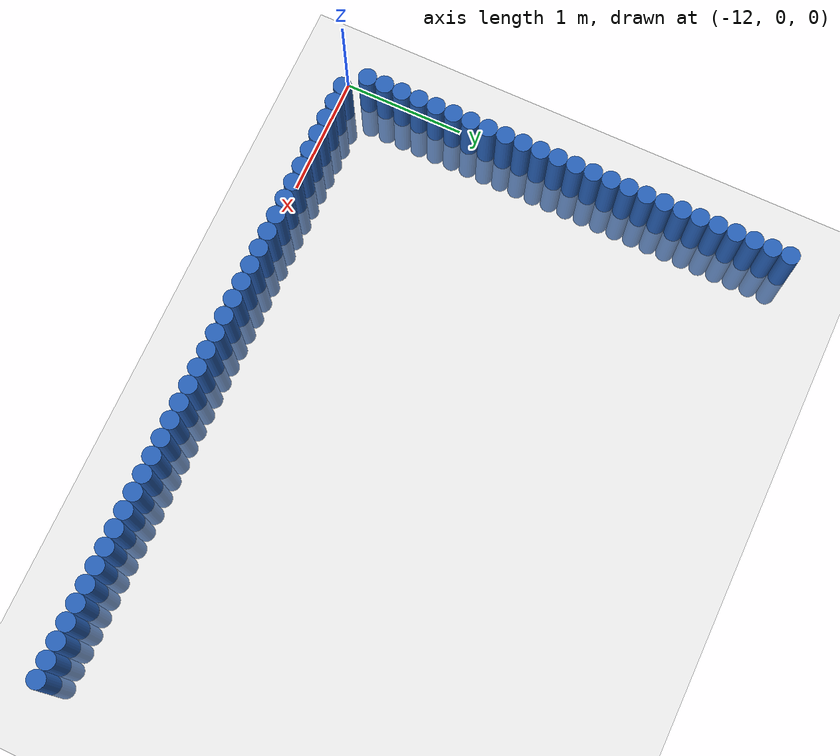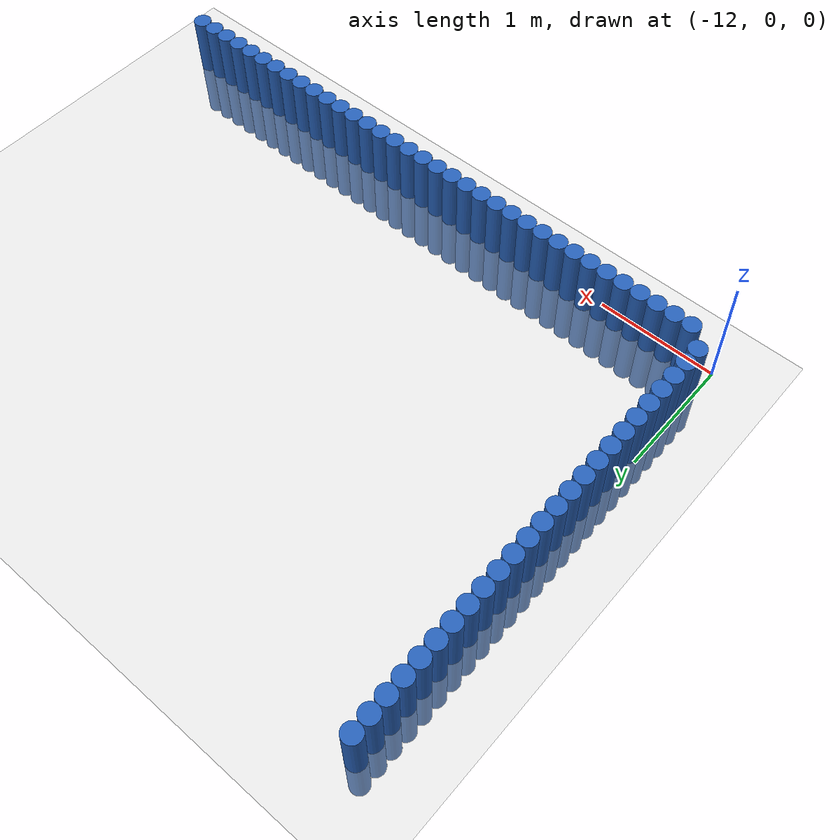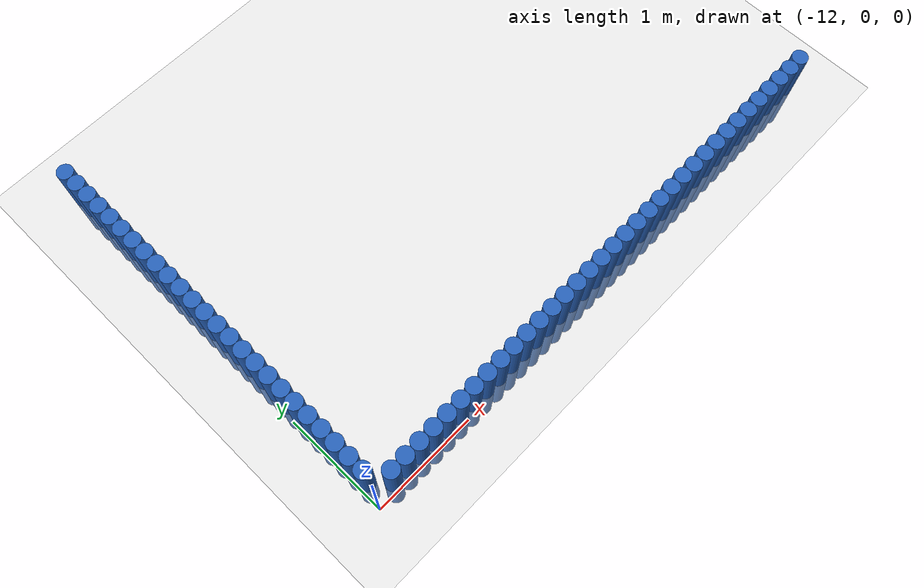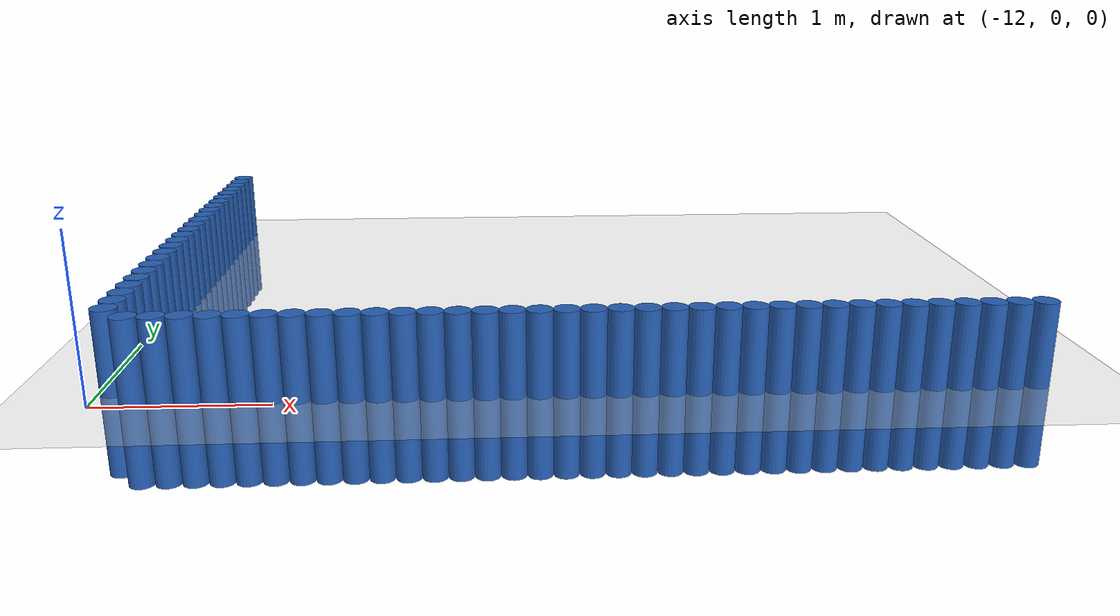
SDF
<sdf version="1.6">
 <world name="default">
  <model name="ground_plane">
   <static>1</static>
   <link name="link">
    <collision name="collision">
     <geometry><plane><normal>0 0 1</normal><size>100 100</size></plane></geometry>
     <surface><friction><ode><mu>100</mu><mu2>50</mu2></ode></friction></surface>
    </collision>
    <visual name="visual">
     <cast_shadows>0</cast_shadows>
     <geometry><plane><normal>0 0 1</normal><size>100 100</size></plane></geometry>
     <material>
      <script><uri>file://media/materials/scripts/gazebo.material</uri><name>Gazebo/Grey</name></script>
     </material>
    </visual>
   </link>
  </model>
  <model name="unit_cylinder_44">
   <static>1</static>
   <pose>-6.675 0.075 0 0 -0 0</pose>
   <link name="link">
    <inertial>
     <mass>1</mass>
     <inertia><ixx>0.145833</ixx><ixy>0</ixy><ixz>0</ixz><iyy>0.145833</iyy><iyz>0</iyz><izz>0.125</izz></inertia>
    </inertial>
    <collision name="collision">
     <geometry><cylinder><radius>0.075</radius><length>1</length></cylinder></geometry>
    </collision>
    <visual name="visual">
     <geometry><cylinder><radius>0.075</radius><length>1</length></cylinder></geometry>
     <material><ambient>0.152 0.379 0.72 1</ambient><diffuse>0.152 0.379 0.72 1</diffuse></material>
     <material>
      <script><name>Gazebo/Grey</name><uri>file://media/materials/scripts/gazebo.material</uri></script>
     </material>
    </visual>
   </link>
  </model>
  <model name="unit_cylinder_45">
   <static>1</static>
   <pose>-6.825 0.075 0 0 -0 0</pose>
   <link name="link">
    <inertial>
     <mass>1</mass>
     <inertia><ixx>0.145833</ixx><ixy>0</ixy><ixz>0</ixz><iyy>0.145833</iyy><iyz>0</iyz><izz>0.125</izz></inertia>
    </inertial>
    <collision name="collision">
     <geometry><cylinder><radius>0.075</radius><length>1</length></cylinder></geometry>
    </collision>
    <visual name="visual">
     <geometry><cylinder><radius>0.075</radius><length>1</length></cylinder></geometry>
     <material><ambient>0.152 0.379 0.72 1</ambient><diffuse>0.152 0.379 0.72 1</diffuse></material>
     <material>
      <script><name>Gazebo/Grey</name><uri>file://media/materials/scripts/gazebo.material</uri></script>
     </material>
    </visual>
   </link>
  </model>
  <model name="unit_cylinder_46">
   <static>1</static>
   <pose>-6.975 0.075 0 0 -0 0</pose>
   <link name="link">
    <inertial>
     <mass>1</mass>
     <inertia><ixx>0.145833</ixx><ixy>0</ixy><ixz>0</ixz><iyy>0.145833</iyy><iyz>0</iyz><izz>0.125</izz></inertia>
    </inertial>
    <collision name="collision">
     <geometry><cylinder><radius>0.075</radius><length>1</length></cylinder></geometry>
    </collision>
    <visual name="visual">
     <geometry><cylinder><radius>0.075</radius><length>1</length></cylinder></geometry>
     <material><ambient>0.152 0.379 0.72 1</ambient><diffuse>0.152 0.379 0.72 1</diffuse></material>
     <material>
      <script><name>Gazebo/Grey</name><uri>file://media/materials/scripts/gazebo.material</uri></script>
     </material>
    </visual>
   </link>
  </model>
  <model name="unit_cylinder_47">
   <static>1</static>
   <pose>-7.125 0.075 0 0 -0 0</pose>
   <link name="link">
    <inertial>
     <mass>1</mass>
     <inertia><ixx>0.145833</ixx><ixy>0</ixy><ixz>0</ixz><iyy>0.145833</iyy><iyz>0</iyz><izz>0.125</izz></inertia>
    </inertial>
    <collision name="collision">
     <geometry><cylinder><radius>0.075</radius><length>1</length></cylinder></geometry>
    </collision>
    <visual name="visual">
     <geometry><cylinder><radius>0.075</radius><length>1</length></cylinder></geometry>
     <material><ambient>0.152 0.379 0.72 1</ambient><diffuse>0.152 0.379 0.72 1</diffuse></material>
     <material>
      <script><name>Gazebo/Grey</name><uri>file://media/materials/scripts/gazebo.material</uri></script>
     </material>
    </visual>
   </link>
  </model>
  <model name="unit_cylinder_48">
   <static>1</static>
   <pose>-7.275 0.075 0 0 -0 0</pose>
   <link name="link">
    <inertial>
     <mass>1</mass>
     <inertia><ixx>0.145833</ixx><ixy>0</ixy><ixz>0</ixz><iyy>0.145833</iyy><iyz>0</iyz><izz>0.125</izz></inertia>
    </inertial>
    <collision name="collision">
     <geometry><cylinder><radius>0.075</radius><length>1</length></cylinder></geometry>
    </collision>
    <visual name="visual">
     <geometry><cylinder><radius>0.075</radius><length>1</length></cylinder></geometry>
     <material><ambient>0.152 0.379 0.72 1</ambient><diffuse>0.152 0.379 0.72 1</diffuse></material>
     <material>
      <script><name>Gazebo/Grey</name><uri>file://media/materials/scripts/gazebo.material</uri></script>
     </material>
    </visual>
   </link>
  </model>
  <model name="unit_cylinder_49">
   <static>1</static>
   <pose>-7.425 0.075 0 0 -0 0</pose>
   <link name="link">
    <inertial>
     <mass>1</mass>
     <inertia><ixx>0.145833</ixx><ixy>0</ixy><ixz>0</ixz><iyy>0.145833</iyy><iyz>0</iyz><izz>0.125</izz></inertia>
    </inertial>
    <collision name="collision">
     <geometry><cylinder><radius>0.075</radius><length>1</length></cylinder></geometry>
    </collision>
    <visual name="visual">
     <geometry><cylinder><radius>0.075</radius><length>1</length></cylinder></geometry>
     <material><ambient>0.152 0.379 0.72 1</ambient><diffuse>0.152 0.379 0.72 1</diffuse></material>
     <material>
      <script><name>Gazebo/Grey</name><uri>file://media/materials/scripts/gazebo.material</uri></script>
     </material>
    </visual>
   </link>
  </model>
  <model name="unit_cylinder_50">
   <static>1</static>
   <pose>-7.575 0.075 0 0 -0 0</pose>
   <link name="link">
    <inertial>
     <mass>1</mass>
     <inertia><ixx>0.145833</ixx><ixy>0</ixy><ixz>0</ixz><iyy>0.145833</iyy><iyz>0</iyz><izz>0.125</izz></inertia>
    </inertial>
    <collision name="collision">
     <geometry><cylinder><radius>0.075</radius><length>1</length></cylinder></geometry>
    </collision>
    <visual name="visual">
     <geometry><cylinder><radius>0.075</radius><length>1</length></cylinder></geometry>
     <material><ambient>0.152 0.379 0.72 1</ambient><diffuse>0.152 0.379 0.72 1</diffuse></material>
     <material>
      <script><name>Gazebo/Grey</name><uri>file://media/materials/scripts/gazebo.material</uri></script>
     </material>
    </visual>
   </link>
  </model>
  <model name="unit_cylinder_51">
   <static>1</static>
   <pose>-7.725 0.075 0 0 -0 0</pose>
   <link name="link">
    <inertial>
     <mass>1</mass>
     <inertia><ixx>0.145833</ixx><ixy>0</ixy><ixz>0</ixz><iyy>0.145833</iyy><iyz>0</iyz><izz>0.125</izz></inertia>
    </inertial>
    <collision name="collision">
     <geometry><cylinder><radius>0.075</radius><length>1</length></cylinder></geometry>
    </collision>
    <visual name="visual">
     <geometry><cylinder><radius>0.075</radius><length>1</length></cylinder></geometry>
     <material><ambient>0.152 0.379 0.72 1</ambient><diffuse>0.152 0.379 0.72 1</diffuse></material>
     <material>
      <script><name>Gazebo/Grey</name><uri>file://media/materials/scripts/gazebo.material</uri></script>
     </material>
    </visual>
   </link>
  </model>
  <model name="unit_cylinder_52">
   <static>1</static>
   <pose>-7.875 0.075 0 0 -0 0</pose>
   <link name="link">
    <inertial>
     <mass>1</mass>
     <inertia><ixx>0.145833</ixx><ixy>0</ixy><ixz>0</ixz><iyy>0.145833</iyy><iyz>0</iyz><izz>0.125</izz></inertia>
    </inertial>
    <collision name="collision">
     <geometry><cylinder><radius>0.075</radius><length>1</length></cylinder></geometry>
    </collision>
    <visual name="visual">
     <geometry><cylinder><radius>0.075</radius><length>1</length></cylinder></geometry>
     <material><ambient>0.152 0.379 0.72 1</ambient><diffuse>0.152 0.379 0.72 1</diffuse></material>
     <material>
      <script><name>Gazebo/Grey</name><uri>file://media/materials/scripts/gazebo.material</uri></script>
     </material>
    </visual>
   </link>
  </model>
  <model name="unit_cylinder_53">
   <static>1</static>
   <pose>-8.025 0.075 0 0 -0 0</pose>
   <link name="link">
    <inertial>
     <mass>1</mass>
     <inertia><ixx>0.145833</ixx><ixy>0</ixy><ixz>0</ixz><iyy>0.145833</iyy><iyz>0</iyz><izz>0.125</izz></inertia>
    </inertial>
    <collision name="collision">
     <geometry><cylinder><radius>0.075</radius><length>1</length></cylinder></geometry>
    </collision>
    <visual name="visual">
     <geometry><cylinder><radius>0.075</radius><length>1</length></cylinder></geometry>
     <material><ambient>0.152 0.379 0.72 1</ambient><diffuse>0.152 0.379 0.72 1</diffuse></material>
     <material>
      <script><name>Gazebo/Grey</name><uri>file://media/materials/scripts/gazebo.material</uri></script>
     </material>
    </visual>
   </link>
  </model>
  <model name="unit_cylinder_54">
   <static>1</static>
   <pose>-8.175 0.075 0 0 -0 0</pose>
   <link name="link">
    <inertial>
     <mass>1</mass>
     <inertia><ixx>0.145833</ixx><ixy>0</ixy><ixz>0</ixz><iyy>0.145833</iyy><iyz>0</iyz><izz>0.125</izz></inertia>
    </inertial>
    <collision name="collision">
     <geometry><cylinder><radius>0.075</radius><length>1</length></cylinder></geometry>
    </collision>
    <visual name="visual">
     <geometry><cylinder><radius>0.075</radius><length>1</length></cylinder></geometry>
     <material><ambient>0.152 0.379 0.72 1</ambient><diffuse>0.152 0.379 0.72 1</diffuse></material>
     <material>
      <script><name>Gazebo/Grey</name><uri>file://media/materials/scripts/gazebo.material</uri></script>
     </material>
    </visual>
   </link>
  </model>
  <model name="unit_cylinder_55">
   <static>1</static>
   <pose>-8.325 0.075 0 0 -0 0</pose>
   <link name="link">
    <inertial>
     <mass>1</mass>
     <inertia><ixx>0.145833</ixx><ixy>0</ixy><ixz>0</ixz><iyy>0.145833</iyy><iyz>0</iyz><izz>0.125</izz></inertia>
    </inertial>
    <collision name="collision">
     <geometry><cylinder><radius>0.075</radius><length>1</length></cylinder></geometry>
    </collision>
    <visual name="visual">
     <geometry><cylinder><radius>0.075</radius><length>1</length></cylinder></geometry>
     <material><ambient>0.152 0.379 0.72 1</ambient><diffuse>0.152 0.379 0.72 1</diffuse></material>
     <material>
      <script><name>Gazebo/Grey</name><uri>file://media/materials/scripts/gazebo.material</uri></script>
     </material>
    </visual>
   </link>
  </model>
  <model name="unit_cylinder_56">
   <static>1</static>
   <pose>-8.475 0.075 0 0 -0 0</pose>
   <link name="link">
    <inertial>
     <mass>1</mass>
     <inertia><ixx>0.145833</ixx><ixy>0</ixy><ixz>0</ixz><iyy>0.145833</iyy><iyz>0</iyz><izz>0.125</izz></inertia>
    </inertial>
    <collision name="collision">
     <geometry><cylinder><radius>0.075</radius><length>1</length></cylinder></geometry>
    </collision>
    <visual name="visual">
     <geometry><cylinder><radius>0.075</radius><length>1</length></cylinder></geometry>
     <material><ambient>0.152 0.379 0.72 1</ambient><diffuse>0.152 0.379 0.72 1</diffuse></material>
     <material>
      <script><name>Gazebo/Grey</name><uri>file://media/materials/scripts/gazebo.material</uri></script>
     </material>
    </visual>
   </link>
  </model>
  <model name="unit_cylinder_57">
   <static>1</static>
   <pose>-8.625 0.075 0 0 -0 0</pose>
   <link name="link">
    <inertial>
     <mass>1</mass>
     <inertia><ixx>0.145833</ixx><ixy>0</ixy><ixz>0</ixz><iyy>0.145833</iyy><iyz>0</iyz><izz>0.125</izz></inertia>
    </inertial>
    <collision name="collision">
     <geometry><cylinder><radius>0.075</radius><length>1</length></cylinder></geometry>
    </collision>
    <visual name="visual">
     <geometry><cylinder><radius>0.075</radius><length>1</length></cylinder></geometry>
     <material><ambient>0.152 0.379 0.72 1</ambient><diffuse>0.152 0.379 0.72 1</diffuse></material>
     <material>
      <script><name>Gazebo/Grey</name><uri>file://media/materials/scripts/gazebo.material</uri></script>
     </material>
    </visual>
   </link>
  </model>
  <model name="unit_cylinder_58">
   <static>1</static>
   <pose>-8.775 0.075 0 0 -0 0</pose>
   <link name="link">
    <inertial>
     <mass>1</mass>
     <inertia><ixx>0.145833</ixx><ixy>0</ixy><ixz>0</ixz><iyy>0.145833</iyy><iyz>0</iyz><izz>0.125</izz></inertia>
    </inertial>
    <collision name="collision">
     <geometry><cylinder><radius>0.075</radius><length>1</length></cylinder></geometry>
    </collision>
    <visual name="visual">
     <geometry><cylinder><radius>0.075</radius><length>1</length></cylinder></geometry>
     <material><ambient>0.152 0.379 0.72 1</ambient><diffuse>0.152 0.379 0.72 1</diffuse></material>
     <material>
      <script><name>Gazebo/Grey</name><uri>file://media/materials/scripts/gazebo.material</uri></script>
     </material>
    </visual>
   </link>
  </model>
  <model name="unit_cylinder_59">
   <static>1</static>
   <pose>-8.925 0.075 0 0 -0 0</pose>
   <link name="link">
    <inertial>
     <mass>1</mass>
     <inertia><ixx>0.145833</ixx><ixy>0</ixy><ixz>0</ixz><iyy>0.145833</iyy><iyz>0</iyz><izz>0.125</izz></inertia>
    </inertial>
    <collision name="collision">
     <geometry><cylinder><radius>0.075</radius><length>1</length></cylinder></geometry>
    </collision>
    <visual name="visual">
     <geometry><cylinder><radius>0.075</radius><length>1</length></cylinder></geometry>
     <material><ambient>0.152 0.379 0.72 1</ambient><diffuse>0.152 0.379 0.72 1</diffuse></material>
     <material>
      <script><name>Gazebo/Grey</name><uri>file://media/materials/scripts/gazebo.material</uri></script>
     </material>
    </visual>
   </link>
  </model>
  <model name="unit_cylinder_60">
   <static>1</static>
   <pose>-9.075 0.075 0 0 -0 0</pose>
   <link name="link">
    <inertial>
     <mass>1</mass>
     <inertia><ixx>0.145833</ixx><ixy>0</ixy><ixz>0</ixz><iyy>0.145833</iyy><iyz>0</iyz><izz>0.125</izz></inertia>
    </inertial>
    <collision name="collision">
     <geometry><cylinder><radius>0.075</radius><length>1</length></cylinder></geometry>
    </collision>
    <visual name="visual">
     <geometry><cylinder><radius>0.075</radius><length>1</length></cylinder></geometry>
     <material><ambient>0.152 0.379 0.72 1</ambient><diffuse>0.152 0.379 0.72 1</diffuse></material>
     <material>
      <script><name>Gazebo/Grey</name><uri>file://media/materials/scripts/gazebo.material</uri></script>
     </material>
    </visual>
   </link>
  </model>
  <model name="unit_cylinder_61">
   <static>1</static>
   <pose>-9.225 0.075 0 0 -0 0</pose>
   <link name="link">
    <inertial>
     <mass>1</mass>
     <inertia><ixx>0.145833</ixx><ixy>0</ixy><ixz>0</ixz><iyy>0.145833</iyy><iyz>0</iyz><izz>0.125</izz></inertia>
    </inertial>
    <collision name="collision">
     <geometry><cylinder><radius>0.075</radius><length>1</length></cylinder></geometry>
    </collision>
    <visual name="visual">
     <geometry><cylinder><radius>0.075</radius><length>1</length></cylinder></geometry>
     <material><ambient>0.152 0.379 0.72 1</ambient><diffuse>0.152 0.379 0.72 1</diffuse></material>
     <material>
      <script><name>Gazebo/Grey</name><uri>file://media/materials/scripts/gazebo.material</uri></script>
     </material>
    </visual>
   </link>
  </model>
  <model name="unit_cylinder_62">
   <static>1</static>
   <pose>-9.375 0.075 0 0 -0 0</pose>
   <link name="link">
    <inertial>
     <mass>1</mass>
     <inertia><ixx>0.145833</ixx><ixy>0</ixy><ixz>0</ixz><iyy>0.145833</iyy><iyz>0</iyz><izz>0.125</izz></inertia>
    </inertial>
    <collision name="collision">
     <geometry><cylinder><radius>0.075</radius><length>1</length></cylinder></geometry>
    </collision>
    <visual name="visual">
     <geometry><cylinder><radius>0.075</radius><length>1</length></cylinder></geometry>
     <material><ambient>0.152 0.379 0.72 1</ambient><diffuse>0.152 0.379 0.72 1</diffuse></material>
     <material>
      <script><name>Gazebo/Grey</name><uri>file://media/materials/scripts/gazebo.material</uri></script>
     </material>
    </visual>
   </link>
  </model>
  <model name="unit_cylinder_63">
   <static>1</static>
   <pose>-9.525 0.075 0 0 -0 0</pose>
   <link name="link">
    <inertial>
     <mass>1</mass>
     <inertia><ixx>0.145833</ixx><ixy>0</ixy><ixz>0</ixz><iyy>0.145833</iyy><iyz>0</iyz><izz>0.125</izz></inertia>
    </inertial>
    <collision name="collision">
     <geometry><cylinder><radius>0.075</radius><length>1</length></cylinder></geometry>
    </collision>
    <visual name="visual">
     <geometry><cylinder><radius>0.075</radius><length>1</length></cylinder></geometry>
     <material><ambient>0.152 0.379 0.72 1</ambient><diffuse>0.152 0.379 0.72 1</diffuse></material>
     <material>
      <script><name>Gazebo/Grey</name><uri>file://media/materials/scripts/gazebo.material</uri></script>
     </material>
    </visual>
   </link>
  </model>
  <model name="unit_cylinder_64">
   <static>1</static>
   <pose>-9.675 0.075 0 0 -0 0</pose>
   <link name="link">
    <inertial>
     <mass>1</mass>
     <inertia><ixx>0.145833</ixx><ixy>0</ixy><ixz>0</ixz><iyy>0.145833</iyy><iyz>0</iyz><izz>0.125</izz></inertia>
    </inertial>
    <collision name="collision">
     <geometry><cylinder><radius>0.075</radius><length>1</length></cylinder></geometry>
    </collision>
    <visual name="visual">
     <geometry><cylinder><radius>0.075</radius><length>1</length></cylinder></geometry>
     <material><ambient>0.152 0.379 0.72 1</ambient><diffuse>0.152 0.379 0.72 1</diffuse></material>
     <material>
      <script><name>Gazebo/Grey</name><uri>file://media/materials/scripts/gazebo.material</uri></script>
     </material>
    </visual>
   </link>
  </model>
  <model name="unit_cylinder_65">
   <static>1</static>
   <pose>-9.825 0.075 0 0 -0 0</pose>
   <link name="link">
    <inertial>
     <mass>1</mass>
     <inertia><ixx>0.145833</ixx><ixy>0</ixy><ixz>0</ixz><iyy>0.145833</iyy><iyz>0</iyz><izz>0.125</izz></inertia>
    </inertial>
    <collision name="collision">
     <geometry><cylinder><radius>0.075</radius><length>1</length></cylinder></geometry>
    </collision>
    <visual name="visual">
     <geometry><cylinder><radius>0.075</radius><length>1</length></cylinder></geometry>
     <material><ambient>0.152 0.379 0.72 1</ambient><diffuse>0.152 0.379 0.72 1</diffuse></material>
     <material>
      <script><name>Gazebo/Grey</name><uri>file://media/materials/scripts/gazebo.material</uri></script>
     </material>
    </visual>
   </link>
  </model>
  <model name="unit_cylinder_66">
   <static>1</static>
   <pose>-9.975 0.075 0 0 -0 0</pose>
   <link name="link">
    <inertial>
     <mass>1</mass>
     <inertia><ixx>0.145833</ixx><ixy>0</ixy><ixz>0</ixz><iyy>0.145833</iyy><iyz>0</iyz><izz>0.125</izz></inertia>
    </inertial>
    <collision name="collision">
     <geometry><cylinder><radius>0.075</radius><length>1</length></cylinder></geometry>
    </collision>
    <visual name="visual">
     <geometry><cylinder><radius>0.075</radius><length>1</length></cylinder></geometry>
     <material><ambient>0.152 0.379 0.72 1</ambient><diffuse>0.152 0.379 0.72 1</diffuse></material>
     <material>
      <script><name>Gazebo/Grey</name><uri>file://media/materials/scripts/gazebo.material</uri></script>
     </material>
    </visual>
   </link>
  </model>
  <model name="unit_cylinder_67">
   <static>1</static>
   <pose>-10.125 0.075 0 0 -0 0</pose>
   <link name="link">
    <inertial>
     <mass>1</mass>
     <inertia><ixx>0.145833</ixx><ixy>0</ixy><ixz>0</ixz><iyy>0.145833</iyy><iyz>0</iyz><izz>0.125</izz></inertia>
    </inertial>
    <collision name="collision">
     <geometry><cylinder><radius>0.075</radius><length>1</length></cylinder></geometry>
    </collision>
    <visual name="visual">
     <geometry><cylinder><radius>0.075</radius><length>1</length></cylinder></geometry>
     <material><ambient>0.152 0.379 0.72 1</ambient><diffuse>0.152 0.379 0.72 1</diffuse></material>
     <material>
      <script><name>Gazebo/Grey</name><uri>file://media/materials/scripts/gazebo.material</uri></script>
     </material>
    </visual>
   </link>
  </model>
  <model name="unit_cylinder_68">
   <static>1</static>
   <pose>-10.275 0.075 0 0 -0 0</pose>
   <link name="link">
    <inertial>
     <mass>1</mass>
     <inertia><ixx>0.145833</ixx><ixy>0</ixy><ixz>0</ixz><iyy>0.145833</iyy><iyz>0</iyz><izz>0.125</izz></inertia>
    </inertial>
    <collision name="collision">
     <geometry><cylinder><radius>0.075</radius><length>1</length></cylinder></geometry>
    </collision>
    <visual name="visual">
     <geometry><cylinder><radius>0.075</radius><length>1</length></cylinder></geometry>
     <material><ambient>0.152 0.379 0.72 1</ambient><diffuse>0.152 0.379 0.72 1</diffuse></material>
     <material>
      <script><name>Gazebo/Grey</name><uri>file://media/materials/scripts/gazebo.material</uri></script>
     </material>
    </visual>
   </link>
  </model>
  <model name="unit_cylinder_69">
   <static>1</static>
   <pose>-10.425 0.075 0 0 -0 0</pose>
   <link name="link">
    <inertial>
     <mass>1</mass>
     <inertia><ixx>0.145833</ixx><ixy>0</ixy><ixz>0</ixz><iyy>0.145833</iyy><iyz>0</iyz><izz>0.125</izz></inertia>
    </inertial>
    <collision name="collision">
     <geometry><cylinder><radius>0.075</radius><length>1</length></cylinder></geometry>
    </collision>
    <visual name="visual">
     <geometry><cylinder><radius>0.075</radius><length>1</length></cylinder></geometry>
     <material><ambient>0.152 0.379 0.72 1</ambient><diffuse>0.152 0.379 0.72 1</diffuse></material>
     <material>
      <script><name>Gazebo/Grey</name><uri>file://media/materials/scripts/gazebo.material</uri></script>
     </material>
    </visual>
   </link>
  </model>
  <model name="unit_cylinder_70">
   <static>1</static>
   <pose>-10.575 0.075 0 0 -0 0</pose>
   <link name="link">
    <inertial>
     <mass>1</mass>
     <inertia><ixx>0.145833</ixx><ixy>0</ixy><ixz>0</ixz><iyy>0.145833</iyy><iyz>0</iyz><izz>0.125</izz></inertia>
    </inertial>
    <collision name="collision">
     <geometry><cylinder><radius>0.075</radius><length>1</length></cylinder></geometry>
    </collision>
    <visual name="visual">
     <geometry><cylinder><radius>0.075</radius><length>1</length></cylinder></geometry>
     <material><ambient>0.152 0.379 0.72 1</ambient><diffuse>0.152 0.379 0.72 1</diffuse></material>
     <material>
      <script><name>Gazebo/Grey</name><uri>file://media/materials/scripts/gazebo.material</uri></script>
     </material>
    </visual>
   </link>
  </model>
  <model name="unit_cylinder_71">
   <static>1</static>
   <pose>-10.725 0.075 0 0 -0 0</pose>
   <link name="link">
    <inertial>
     <mass>1</mass>
     <inertia><ixx>0.145833</ixx><ixy>0</ixy><ixz>0</ixz><iyy>0.145833</iyy><iyz>0</iyz><izz>0.125</izz></inertia>
    </inertial>
    <collision name="collision">
     <geometry><cylinder><radius>0.075</radius><length>1</length></cylinder></geometry>
    </collision>
    <visual name="visual">
     <geometry><cylinder><radius>0.075</radius><length>1</length></cylinder></geometry>
     <material><ambient>0.152 0.379 0.72 1</ambient><diffuse>0.152 0.379 0.72 1</diffuse></material>
     <material>
      <script><name>Gazebo/Grey</name><uri>file://media/materials/scripts/gazebo.material</uri></script>
     </material>
    </visual>
   </link>
  </model>
  <model name="unit_cylinder_72">
   <static>1</static>
   <pose>-10.875 0.075 0 0 -0 0</pose>
   <link name="link">
    <inertial>
     <mass>1</mass>
     <inertia><ixx>0.145833</ixx><ixy>0</ixy><ixz>0</ixz><iyy>0.145833</iyy><iyz>0</iyz><izz>0.125</izz></inertia>
    </inertial>
    <collision name="collision">
     <geometry><cylinder><radius>0.075</radius><length>1</length></cylinder></geometry>
    </collision>
    <visual name="visual">
     <geometry><cylinder><radius>0.075</radius><length>1</length></cylinder></geometry>
     <material><ambient>0.152 0.379 0.72 1</ambient><diffuse>0.152 0.379 0.72 1</diffuse></material>
     <material>
      <script><name>Gazebo/Grey</name><uri>file://media/materials/scripts/gazebo.material</uri></script>
     </material>
    </visual>
   </link>
  </model>
  <model name="unit_cylinder_73">
   <static>1</static>
   <pose>-11.025 0.075 0 0 -0 0</pose>
   <link name="link">
    <inertial>
     <mass>1</mass>
     <inertia><ixx>0.145833</ixx><ixy>0</ixy><ixz>0</ixz><iyy>0.145833</iyy><iyz>0</iyz><izz>0.125</izz></inertia>
    </inertial>
    <collision name="collision">
     <geometry><cylinder><radius>0.075</radius><length>1</length></cylinder></geometry>
    </collision>
    <visual name="visual">
     <geometry><cylinder><radius>0.075</radius><length>1</length></cylinder></geometry>
     <material><ambient>0.152 0.379 0.72 1</ambient><diffuse>0.152 0.379 0.72 1</diffuse></material>
     <material>
      <script><name>Gazebo/Grey</name><uri>file://media/materials/scripts/gazebo.material</uri></script>
     </material>
    </visual>
   </link>
  </model>
  <model name="unit_cylinder_74">
   <static>1</static>
   <pose>-11.175 0.075 0 0 -0 0</pose>
   <link name="link">
    <inertial>
     <mass>1</mass>
     <inertia><ixx>0.145833</ixx><ixy>0</ixy><ixz>0</ixz><iyy>0.145833</iyy><iyz>0</iyz><izz>0.125</izz></inertia>
    </inertial>
    <collision name="collision">
     <geometry><cylinder><radius>0.075</radius><length>1</length></cylinder></geometry>
    </collision>
    <visual name="visual">
     <geometry><cylinder><radius>0.075</radius><length>1</length></cylinder></geometry>
     <material><ambient>0.152 0.379 0.72 1</ambient><diffuse>0.152 0.379 0.72 1</diffuse></material>
     <material>
      <script><name>Gazebo/Grey</name><uri>file://media/materials/scripts/gazebo.material</uri></script>
     </material>
    </visual>
   </link>
  </model>
  <model name="unit_cylinder_75">
   <static>1</static>
   <pose>-11.325 0.075 0 0 -0 0</pose>
   <link name="link">
    <inertial>
     <mass>1</mass>
     <inertia><ixx>0.145833</ixx><ixy>0</ixy><ixz>0</ixz><iyy>0.145833</iyy><iyz>0</iyz><izz>0.125</izz></inertia>
    </inertial>
    <collision name="collision">
     <geometry><cylinder><radius>0.075</radius><length>1</length></cylinder></geometry>
    </collision>
    <visual name="visual">
     <geometry><cylinder><radius>0.075</radius><length>1</length></cylinder></geometry>
     <material><ambient>0.152 0.379 0.72 1</ambient><diffuse>0.152 0.379 0.72 1</diffuse></material>
     <material>
      <script><name>Gazebo/Grey</name><uri>file://media/materials/scripts/gazebo.material</uri></script>
     </material>
    </visual>
   </link>
  </model>
  <model name="unit_cylinder_76">
   <static>1</static>
   <pose>-11.475 0.075 0 0 -0 0</pose>
   <link name="link">
    <inertial>
     <mass>1</mass>
     <inertia><ixx>0.145833</ixx><ixy>0</ixy><ixz>0</ixz><iyy>0.145833</iyy><iyz>0</iyz><izz>0.125</izz></inertia>
    </inertial>
    <collision name="collision">
     <geometry><cylinder><radius>0.075</radius><length>1</length></cylinder></geometry>
    </collision>
    <visual name="visual">
     <geometry><cylinder><radius>0.075</radius><length>1</length></cylinder></geometry>
     <material><ambient>0.152 0.379 0.72 1</ambient><diffuse>0.152 0.379 0.72 1</diffuse></material>
     <material>
      <script><name>Gazebo/Grey</name><uri>file://media/materials/scripts/gazebo.material</uri></script>
     </material>
    </visual>
   </link>
  </model>
  <model name="unit_cylinder_77">
   <static>1</static>
   <pose>-11.625 0.075 0 0 -0 0</pose>
   <link name="link">
    <inertial>
     <mass>1</mass>
     <inertia><ixx>0.145833</ixx><ixy>0</ixy><ixz>0</ixz><iyy>0.145833</iyy><iyz>0</iyz><izz>0.125</izz></inertia>
    </inertial>
    <collision name="collision">
     <geometry><cylinder><radius>0.075</radius><length>1</length></cylinder></geometry>
    </collision>
    <visual name="visual">
     <geometry><cylinder><radius>0.075</radius><length>1</length></cylinder></geometry>
     <material><ambient>0.152 0.379 0.72 1</ambient><diffuse>0.152 0.379 0.72 1</diffuse></material>
     <material>
      <script><name>Gazebo/Grey</name><uri>file://media/materials/scripts/gazebo.material</uri></script>
     </material>
    </visual>
   </link>
  </model>
  <model name="unit_cylinder_78">
   <static>1</static>
   <pose>-11.775 0.075 0 0 -0 0</pose>
   <link name="link">
    <inertial>
     <mass>1</mass>
     <inertia><ixx>0.145833</ixx><ixy>0</ixy><ixz>0</ixz><iyy>0.145833</iyy><iyz>0</iyz><izz>0.125</izz></inertia>
    </inertial>
    <collision name="collision">
     <geometry><cylinder><radius>0.075</radius><length>1</length></cylinder></geometry>
    </collision>
    <visual name="visual">
     <geometry><cylinder><radius>0.075</radius><length>1</length></cylinder></geometry>
     <material><ambient>0.152 0.379 0.72 1</ambient><diffuse>0.152 0.379 0.72 1</diffuse></material>
     <material>
      <script><name>Gazebo/Grey</name><uri>file://media/materials/scripts/gazebo.material</uri></script>
     </material>
    </visual>
   </link>
  </model>
  <model name="unit_cylinder_80">
   <static>1</static>
   <pose>-11.925 0.225 0 0 -0 0</pose>
   <link name="link">
    <inertial>
     <mass>1</mass>
     <inertia><ixx>0.145833</ixx><ixy>0</ixy><ixz>0</ixz><iyy>0.145833</iyy><iyz>0</iyz><izz>0.125</izz></inertia>
    </inertial>
    <collision name="collision">
     <geometry><cylinder><radius>0.075</radius><length>1</length></cylinder></geometry>
    </collision>
    <visual name="visual">
     <geometry><cylinder><radius>0.075</radius><length>1</length></cylinder></geometry>
     <material><ambient>0.152 0.379 0.72 1</ambient><diffuse>0.152 0.379 0.72 1</diffuse></material>
     <material>
      <script><name>Gazebo/Grey</name><uri>file://media/materials/scripts/gazebo.material</uri></script>
     </material>
    </visual>
   </link>
  </model>
  <model name="unit_cylinder_82">
   <static>1</static>
   <pose>-11.925 0.375 0 0 -0 0</pose>
   <link name="link">
    <inertial>
     <mass>1</mass>
     <inertia><ixx>0.145833</ixx><ixy>0</ixy><ixz>0</ixz><iyy>0.145833</iyy><iyz>0</iyz><izz>0.125</izz></inertia>
    </inertial>
    <collision name="collision">
     <geometry><cylinder><radius>0.075</radius><length>1</length></cylinder></geometry>
    </collision>
    <visual name="visual">
     <geometry><cylinder><radius>0.075</radius><length>1</length></cylinder></geometry>
     <material><ambient>0.152 0.379 0.72 1</ambient><diffuse>0.152 0.379 0.72 1</diffuse></material>
     <material>
      <script><name>Gazebo/Grey</name><uri>file://media/materials/scripts/gazebo.material</uri></script>
     </material>
    </visual>
   </link>
  </model>
  <model name="unit_cylinder_84">
   <static>1</static>
   <pose>-11.925 0.525 0 0 -0 0</pose>
   <link name="link">
    <inertial>
     <mass>1</mass>
     <inertia><ixx>0.145833</ixx><ixy>0</ixy><ixz>0</ixz><iyy>0.145833</iyy><iyz>0</iyz><izz>0.125</izz></inertia>
    </inertial>
    <collision name="collision">
     <geometry><cylinder><radius>0.075</radius><length>1</length></cylinder></geometry>
    </collision>
    <visual name="visual">
     <geometry><cylinder><radius>0.075</radius><length>1</length></cylinder></geometry>
     <material><ambient>0.152 0.379 0.72 1</ambient><diffuse>0.152 0.379 0.72 1</diffuse></material>
     <material>
      <script><name>Gazebo/Grey</name><uri>file://media/materials/scripts/gazebo.material</uri></script>
     </material>
    </visual>
   </link>
  </model>
  <model name="unit_cylinder_86">
   <static>1</static>
   <pose>-11.925 0.675 0 0 -0 0</pose>
   <link name="link">
    <inertial>
     <mass>1</mass>
     <inertia><ixx>0.145833</ixx><ixy>0</ixy><ixz>0</ixz><iyy>0.145833</iyy><iyz>0</iyz><izz>0.125</izz></inertia>
    </inertial>
    <collision name="collision">
     <geometry><cylinder><radius>0.075</radius><length>1</length></cylinder></geometry>
    </collision>
    <visual name="visual">
     <geometry><cylinder><radius>0.075</radius><length>1</length></cylinder></geometry>
     <material><ambient>0.152 0.379 0.72 1</ambient><diffuse>0.152 0.379 0.72 1</diffuse></material>
     <material>
      <script><name>Gazebo/Grey</name><uri>file://media/materials/scripts/gazebo.material</uri></script>
     </material>
    </visual>
   </link>
  </model>
  <model name="unit_cylinder_88">
   <static>1</static>
   <pose>-11.925 0.825 0 0 -0 0</pose>
   <link name="link">
    <inertial>
     <mass>1</mass>
     <inertia><ixx>0.145833</ixx><ixy>0</ixy><ixz>0</ixz><iyy>0.145833</iyy><iyz>0</iyz><izz>0.125</izz></inertia>
    </inertial>
    <collision name="collision">
     <geometry><cylinder><radius>0.075</radius><length>1</length></cylinder></geometry>
    </collision>
    <visual name="visual">
     <geometry><cylinder><radius>0.075</radius><length>1</length></cylinder></geometry>
     <material><ambient>0.152 0.379 0.72 1</ambient><diffuse>0.152 0.379 0.72 1</diffuse></material>
     <material>
      <script><name>Gazebo/Grey</name><uri>file://media/materials/scripts/gazebo.material</uri></script>
     </material>
    </visual>
   </link>
  </model>
  <model name="unit_cylinder_90">
   <static>1</static>
   <pose>-11.925 0.975 0 0 -0 0</pose>
   <link name="link">
    <inertial>
     <mass>1</mass>
     <inertia><ixx>0.145833</ixx><ixy>0</ixy><ixz>0</ixz><iyy>0.145833</iyy><iyz>0</iyz><izz>0.125</izz></inertia>
    </inertial>
    <collision name="collision">
     <geometry><cylinder><radius>0.075</radius><length>1</length></cylinder></geometry>
    </collision>
    <visual name="visual">
     <geometry><cylinder><radius>0.075</radius><length>1</length></cylinder></geometry>
     <material><ambient>0.152 0.379 0.72 1</ambient><diffuse>0.152 0.379 0.72 1</diffuse></material>
     <material>
      <script><name>Gazebo/Grey</name><uri>file://media/materials/scripts/gazebo.material</uri></script>
     </material>
    </visual>
   </link>
  </model>
  <model name="unit_cylinder_92">
   <static>1</static>
   <pose>-11.925 1.125 0 0 -0 0</pose>
   <link name="link">
    <inertial>
     <mass>1</mass>
     <inertia><ixx>0.145833</ixx><ixy>0</ixy><ixz>0</ixz><iyy>0.145833</iyy><iyz>0</iyz><izz>0.125</izz></inertia>
    </inertial>
    <collision name="collision">
     <geometry><cylinder><radius>0.075</radius><length>1</length></cylinder></geometry>
    </collision>
    <visual name="visual">
     <geometry><cylinder><radius>0.075</radius><length>1</length></cylinder></geometry>
     <material><ambient>0.152 0.379 0.72 1</ambient><diffuse>0.152 0.379 0.72 1</diffuse></material>
     <material>
      <script><name>Gazebo/Grey</name><uri>file://media/materials/scripts/gazebo.material</uri></script>
     </material>
    </visual>
   </link>
  </model>
  <model name="unit_cylinder_94">
   <static>1</static>
   <pose>-11.925 1.275 0 0 -0 0</pose>
   <link name="link">
    <inertial>
     <mass>1</mass>
     <inertia><ixx>0.145833</ixx><ixy>0</ixy><ixz>0</ixz><iyy>0.145833</iyy><iyz>0</iyz><izz>0.125</izz></inertia>
    </inertial>
    <collision name="collision">
     <geometry><cylinder><radius>0.075</radius><length>1</length></cylinder></geometry>
    </collision>
    <visual name="visual">
     <geometry><cylinder><radius>0.075</radius><length>1</length></cylinder></geometry>
     <material><ambient>0.152 0.379 0.72 1</ambient><diffuse>0.152 0.379 0.72 1</diffuse></material>
     <material>
      <script><name>Gazebo/Grey</name><uri>file://media/materials/scripts/gazebo.material</uri></script>
     </material>
    </visual>
   </link>
  </model>
  <model name="unit_cylinder_96">
   <static>1</static>
   <pose>-11.925 1.425 0 0 -0 0</pose>
   <link name="link">
    <inertial>
     <mass>1</mass>
     <inertia><ixx>0.145833</ixx><ixy>0</ixy><ixz>0</ixz><iyy>0.145833</iyy><iyz>0</iyz><izz>0.125</izz></inertia>
    </inertial>
    <collision name="collision">
     <geometry><cylinder><radius>0.075</radius><length>1</length></cylinder></geometry>
    </collision>
    <visual name="visual">
     <geometry><cylinder><radius>0.075</radius><length>1</length></cylinder></geometry>
     <material><ambient>0.152 0.379 0.72 1</ambient><diffuse>0.152 0.379 0.72 1</diffuse></material>
     <material>
      <script><name>Gazebo/Grey</name><uri>file://media/materials/scripts/gazebo.material</uri></script>
     </material>
    </visual>
   </link>
  </model>
  <model name="unit_cylinder_98">
   <static>1</static>
   <pose>-11.925 1.575 0 0 -0 0</pose>
   <link name="link">
    <inertial>
     <mass>1</mass>
     <inertia><ixx>0.145833</ixx><ixy>0</ixy><ixz>0</ixz><iyy>0.145833</iyy><iyz>0</iyz><izz>0.125</izz></inertia>
    </inertial>
    <collision name="collision">
     <geometry><cylinder><radius>0.075</radius><length>1</length></cylinder></geometry>
    </collision>
    <visual name="visual">
     <geometry><cylinder><radius>0.075</radius><length>1</length></cylinder></geometry>
     <material><ambient>0.152 0.379 0.72 1</ambient><diffuse>0.152 0.379 0.72 1</diffuse></material>
     <material>
      <script><name>Gazebo/Grey</name><uri>file://media/materials/scripts/gazebo.material</uri></script>
     </material>
    </visual>
   </link>
  </model>
  <model name="unit_cylinder_100">
   <static>1</static>
   <pose>-11.925 1.725 0 0 -0 0</pose>
   <link name="link">
    <inertial>
     <mass>1</mass>
     <inertia><ixx>0.145833</ixx><ixy>0</ixy><ixz>0</ixz><iyy>0.145833</iyy><iyz>0</iyz><izz>0.125</izz></inertia>
    </inertial>
    <collision name="collision">
     <geometry><cylinder><radius>0.075</radius><length>1</length></cylinder></geometry>
    </collision>
    <visual name="visual">
     <geometry><cylinder><radius>0.075</radius><length>1</length></cylinder></geometry>
     <material><ambient>0.152 0.379 0.72 1</ambient><diffuse>0.152 0.379 0.72 1</diffuse></material>
     <material>
      <script><name>Gazebo/Grey</name><uri>file://media/materials/scripts/gazebo.material</uri></script>
     </material>
    </visual>
   </link>
  </model>
  <model name="unit_cylinder_102">
   <static>1</static>
   <pose>-11.925 1.875 0 0 -0 0</pose>
   <link name="link">
    <inertial>
     <mass>1</mass>
     <inertia><ixx>0.145833</ixx><ixy>0</ixy><ixz>0</ixz><iyy>0.145833</iyy><iyz>0</iyz><izz>0.125</izz></inertia>
    </inertial>
    <collision name="collision">
     <geometry><cylinder><radius>0.075</radius><length>1</length></cylinder></geometry>
    </collision>
    <visual name="visual">
     <geometry><cylinder><radius>0.075</radius><length>1</length></cylinder></geometry>
     <material><ambient>0.152 0.379 0.72 1</ambient><diffuse>0.152 0.379 0.72 1</diffuse></material>
     <material>
      <script><name>Gazebo/Grey</name><uri>file://media/materials/scripts/gazebo.material</uri></script>
     </material>
    </visual>
   </link>
  </model>
  <model name="unit_cylinder_104">
   <static>1</static>
   <pose>-11.925 2.025 0 0 -0 0</pose>
   <link name="link">
    <inertial>
     <mass>1</mass>
     <inertia><ixx>0.145833</ixx><ixy>0</ixy><ixz>0</ixz><iyy>0.145833</iyy><iyz>0</iyz><izz>0.125</izz></inertia>
    </inertial>
    <collision name="collision">
     <geometry><cylinder><radius>0.075</radius><length>1</length></cylinder></geometry>
    </collision>
    <visual name="visual">
     <geometry><cylinder><radius>0.075</radius><length>1</length></cylinder></geometry>
     <material><ambient>0.152 0.379 0.72 1</ambient><diffuse>0.152 0.379 0.72 1</diffuse></material>
     <material>
      <script><name>Gazebo/Grey</name><uri>file://media/materials/scripts/gazebo.material</uri></script>
     </material>
    </visual>
   </link>
  </model>
  <model name="unit_cylinder_106">
   <static>1</static>
   <pose>-11.925 2.175 0 0 -0 0</pose>
   <link name="link">
    <inertial>
     <mass>1</mass>
     <inertia><ixx>0.145833</ixx><ixy>0</ixy><ixz>0</ixz><iyy>0.145833</iyy><iyz>0</iyz><izz>0.125</izz></inertia>
    </inertial>
    <collision name="collision">
     <geometry><cylinder><radius>0.075</radius><length>1</length></cylinder></geometry>
    </collision>
    <visual name="visual">
     <geometry><cylinder><radius>0.075</radius><length>1</length></cylinder></geometry>
     <material><ambient>0.152 0.379 0.72 1</ambient><diffuse>0.152 0.379 0.72 1</diffuse></material>
     <material>
      <script><name>Gazebo/Grey</name><uri>file://media/materials/scripts/gazebo.material</uri></script>
     </material>
    </visual>
   </link>
  </model>
  <model name="unit_cylinder_108">
   <static>1</static>
   <pose>-11.925 2.325 0 0 -0 0</pose>
   <link name="link">
    <inertial>
     <mass>1</mass>
     <inertia><ixx>0.145833</ixx><ixy>0</ixy><ixz>0</ixz><iyy>0.145833</iyy><iyz>0</iyz><izz>0.125</izz></inertia>
    </inertial>
    <collision name="collision">
     <geometry><cylinder><radius>0.075</radius><length>1</length></cylinder></geometry>
    </collision>
    <visual name="visual">
     <geometry><cylinder><radius>0.075</radius><length>1</length></cylinder></geometry>
     <material><ambient>0.152 0.379 0.72 1</ambient><diffuse>0.152 0.379 0.72 1</diffuse></material>
     <material>
      <script><name>Gazebo/Grey</name><uri>file://media/materials/scripts/gazebo.material</uri></script>
     </material>
    </visual>
   </link>
  </model>
  <model name="unit_cylinder_110">
   <static>1</static>
   <pose>-11.925 2.475 0 0 -0 0</pose>
   <link name="link">
    <inertial>
     <mass>1</mass>
     <inertia><ixx>0.145833</ixx><ixy>0</ixy><ixz>0</ixz><iyy>0.145833</iyy><iyz>0</iyz><izz>0.125</izz></inertia>
    </inertial>
    <collision name="collision">
     <geometry><cylinder><radius>0.075</radius><length>1</length></cylinder></geometry>
    </collision>
    <visual name="visual">
     <geometry><cylinder><radius>0.075</radius><length>1</length></cylinder></geometry>
     <material><ambient>0.152 0.379 0.72 1</ambient><diffuse>0.152 0.379 0.72 1</diffuse></material>
     <material>
      <script><name>Gazebo/Grey</name><uri>file://media/materials/scripts/gazebo.material</uri></script>
     </material>
    </visual>
   </link>
  </model>
  <model name="unit_cylinder_112">
   <static>1</static>
   <pose>-11.925 2.625 0 0 -0 0</pose>
   <link name="link">
    <inertial>
     <mass>1</mass>
     <inertia><ixx>0.145833</ixx><ixy>0</ixy><ixz>0</ixz><iyy>0.145833</iyy><iyz>0</iyz><izz>0.125</izz></inertia>
    </inertial>
    <collision name="collision">
     <geometry><cylinder><radius>0.075</radius><length>1</length></cylinder></geometry>
    </collision>
    <visual name="visual">
     <geometry><cylinder><radius>0.075</radius><length>1</length></cylinder></geometry>
     <material><ambient>0.152 0.379 0.72 1</ambient><diffuse>0.152 0.379 0.72 1</diffuse></material>
     <material>
      <script><name>Gazebo/Grey</name><uri>file://media/materials/scripts/gazebo.material</uri></script>
     </material>
    </visual>
   </link>
  </model>
  <model name="unit_cylinder_114">
   <static>1</static>
   <pose>-11.925 2.775 0 0 -0 0</pose>
   <link name="link">
    <inertial>
     <mass>1</mass>
     <inertia><ixx>0.145833</ixx><ixy>0</ixy><ixz>0</ixz><iyy>0.145833</iyy><iyz>0</iyz><izz>0.125</izz></inertia>
    </inertial>
    <collision name="collision">
     <geometry><cylinder><radius>0.075</radius><length>1</length></cylinder></geometry>
    </collision>
    <visual name="visual">
     <geometry><cylinder><radius>0.075</radius><length>1</length></cylinder></geometry>
     <material><ambient>0.152 0.379 0.72 1</ambient><diffuse>0.152 0.379 0.72 1</diffuse></material>
     <material>
      <script><name>Gazebo/Grey</name><uri>file://media/materials/scripts/gazebo.material</uri></script>
     </material>
    </visual>
   </link>
  </model>
  <model name="unit_cylinder_116">
   <static>1</static>
   <pose>-11.925 2.925 0 0 -0 0</pose>
   <link name="link">
    <inertial>
     <mass>1</mass>
     <inertia><ixx>0.145833</ixx><ixy>0</ixy><ixz>0</ixz><iyy>0.145833</iyy><iyz>0</iyz><izz>0.125</izz></inertia>
    </inertial>
    <collision name="collision">
     <geometry><cylinder><radius>0.075</radius><length>1</length></cylinder></geometry>
    </collision>
    <visual name="visual">
     <geometry><cylinder><radius>0.075</radius><length>1</length></cylinder></geometry>
     <material><ambient>0.152 0.379 0.72 1</ambient><diffuse>0.152 0.379 0.72 1</diffuse></material>
     <material>
      <script><name>Gazebo/Grey</name><uri>file://media/materials/scripts/gazebo.material</uri></script>
     </material>
    </visual>
   </link>
  </model>
  <model name="unit_cylinder_118">
   <static>1</static>
   <pose>-11.925 3.075 0 0 -0 0</pose>
   <link name="link">
    <inertial>
     <mass>1</mass>
     <inertia><ixx>0.145833</ixx><ixy>0</ixy><ixz>0</ixz><iyy>0.145833</iyy><iyz>0</iyz><izz>0.125</izz></inertia>
    </inertial>
    <collision name="collision">
     <geometry><cylinder><radius>0.075</radius><length>1</length></cylinder></geometry>
    </collision>
    <visual name="visual">
     <geometry><cylinder><radius>0.075</radius><length>1</length></cylinder></geometry>
     <material><ambient>0.152 0.379 0.72 1</ambient><diffuse>0.152 0.379 0.72 1</diffuse></material>
     <material>
      <script><name>Gazebo/Grey</name><uri>file://media/materials/scripts/gazebo.material</uri></script>
     </material>
    </visual>
   </link>
  </model>
  <model name="unit_cylinder_120">
   <static>1</static>
   <pose>-11.925 3.225 0 0 -0 0</pose>
   <link name="link">
    <inertial>
     <mass>1</mass>
     <inertia><ixx>0.145833</ixx><ixy>0</ixy><ixz>0</ixz><iyy>0.145833</iyy><iyz>0</iyz><izz>0.125</izz></inertia>
    </inertial>
    <collision name="collision">
     <geometry><cylinder><radius>0.075</radius><length>1</length></cylinder></geometry>
    </collision>
    <visual name="visual">
     <geometry><cylinder><radius>0.075</radius><length>1</length></cylinder></geometry>
     <material><ambient>0.152 0.379 0.72 1</ambient><diffuse>0.152 0.379 0.72 1</diffuse></material>
     <material>
      <script><name>Gazebo/Grey</name><uri>file://media/materials/scripts/gazebo.material</uri></script>
     </material>
    </visual>
   </link>
  </model>
  <model name="unit_cylinder_122">
   <static>1</static>
   <pose>-11.925 3.375 0 0 -0 0</pose>
   <link name="link">
    <inertial>
     <mass>1</mass>
     <inertia><ixx>0.145833</ixx><ixy>0</ixy><ixz>0</ixz><iyy>0.145833</iyy><iyz>0</iyz><izz>0.125</izz></inertia>
    </inertial>
    <collision name="collision">
     <geometry><cylinder><radius>0.075</radius><length>1</length></cylinder></geometry>
    </collision>
    <visual name="visual">
     <geometry><cylinder><radius>0.075</radius><length>1</length></cylinder></geometry>
     <material><ambient>0.152 0.379 0.72 1</ambient><diffuse>0.152 0.379 0.72 1</diffuse></material>
     <material>
      <script><name>Gazebo/Grey</name><uri>file://media/materials/scripts/gazebo.material</uri></script>
     </material>
    </visual>
   </link>
  </model>
  <model name="unit_cylinder_124">
   <static>1</static>
   <pose>-11.925 3.525 0 0 -0 0</pose>
   <link name="link">
    <inertial>
     <mass>1</mass>
     <inertia><ixx>0.145833</ixx><ixy>0</ixy><ixz>0</ixz><iyy>0.145833</iyy><iyz>0</iyz><izz>0.125</izz></inertia>
    </inertial>
    <collision name="collision">
     <geometry><cylinder><radius>0.075</radius><length>1</length></cylinder></geometry>
    </collision>
    <visual name="visual">
     <geometry><cylinder><radius>0.075</radius><length>1</length></cylinder></geometry>
     <material><ambient>0.152 0.379 0.72 1</ambient><diffuse>0.152 0.379 0.72 1</diffuse></material>
     <material>
      <script><name>Gazebo/Grey</name><uri>file://media/materials/scripts/gazebo.material</uri></script>
     </material>
    </visual>
   </link>
  </model>
  <model name="unit_cylinder_126">
   <static>1</static>
   <pose>-11.925 3.675 0 0 -0 0</pose>
   <link name="link">
    <inertial>
     <mass>1</mass>
     <inertia><ixx>0.145833</ixx><ixy>0</ixy><ixz>0</ixz><iyy>0.145833</iyy><iyz>0</iyz><izz>0.125</izz></inertia>
    </inertial>
    <collision name="collision">
     <geometry><cylinder><radius>0.075</radius><length>1</length></cylinder></geometry>
    </collision>
    <visual name="visual">
     <geometry><cylinder><radius>0.075</radius><length>1</length></cylinder></geometry>
     <material><ambient>0.152 0.379 0.72 1</ambient><diffuse>0.152 0.379 0.72 1</diffuse></material>
     <material>
      <script><name>Gazebo/Grey</name><uri>file://media/materials/scripts/gazebo.material</uri></script>
     </material>
    </visual>
   </link>
  </model>
  <model name="unit_cylinder_128">
   <static>1</static>
   <pose>-11.925 3.825 0 0 -0 0</pose>
   <link name="link">
    <inertial>
     <mass>1</mass>
     <inertia><ixx>0.145833</ixx><ixy>0</ixy><ixz>0</ixz><iyy>0.145833</iyy><iyz>0</iyz><izz>0.125</izz></inertia>
    </inertial>
    <collision name="collision">
     <geometry><cylinder><radius>0.075</radius><length>1</length></cylinder></geometry>
    </collision>
    <visual name="visual">
     <geometry><cylinder><radius>0.075</radius><length>1</length></cylinder></geometry>
     <material><ambient>0.152 0.379 0.72 1</ambient><diffuse>0.152 0.379 0.72 1</diffuse></material>
     <material>
      <script><name>Gazebo/Grey</name><uri>file://media/materials/scripts/gazebo.material</uri></script>
     </material>
    </visual>
   </link>
  </model>
 </world>
</sdf>
